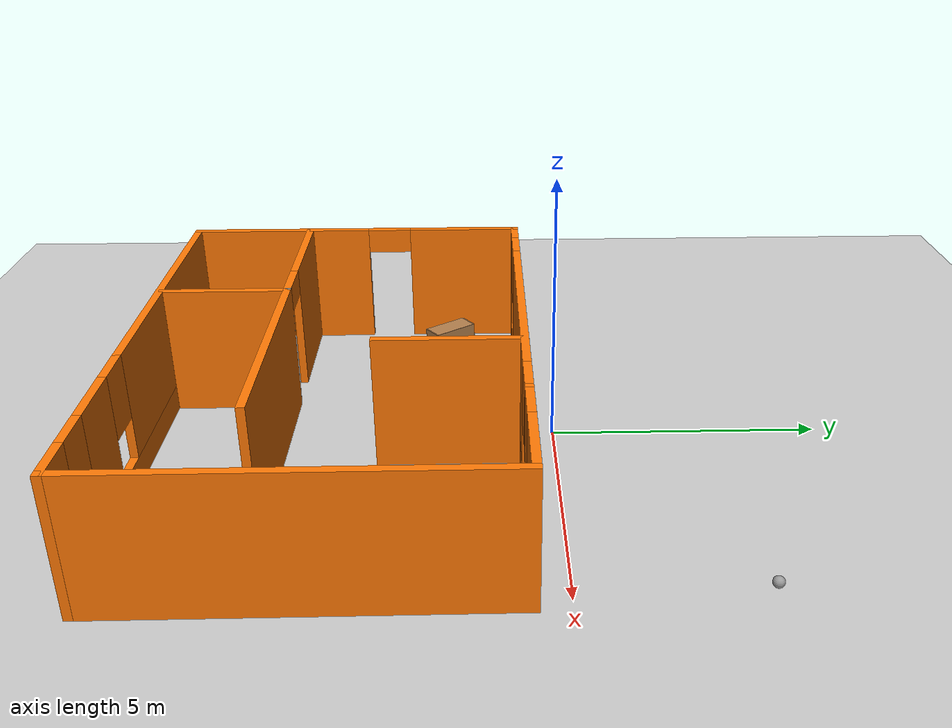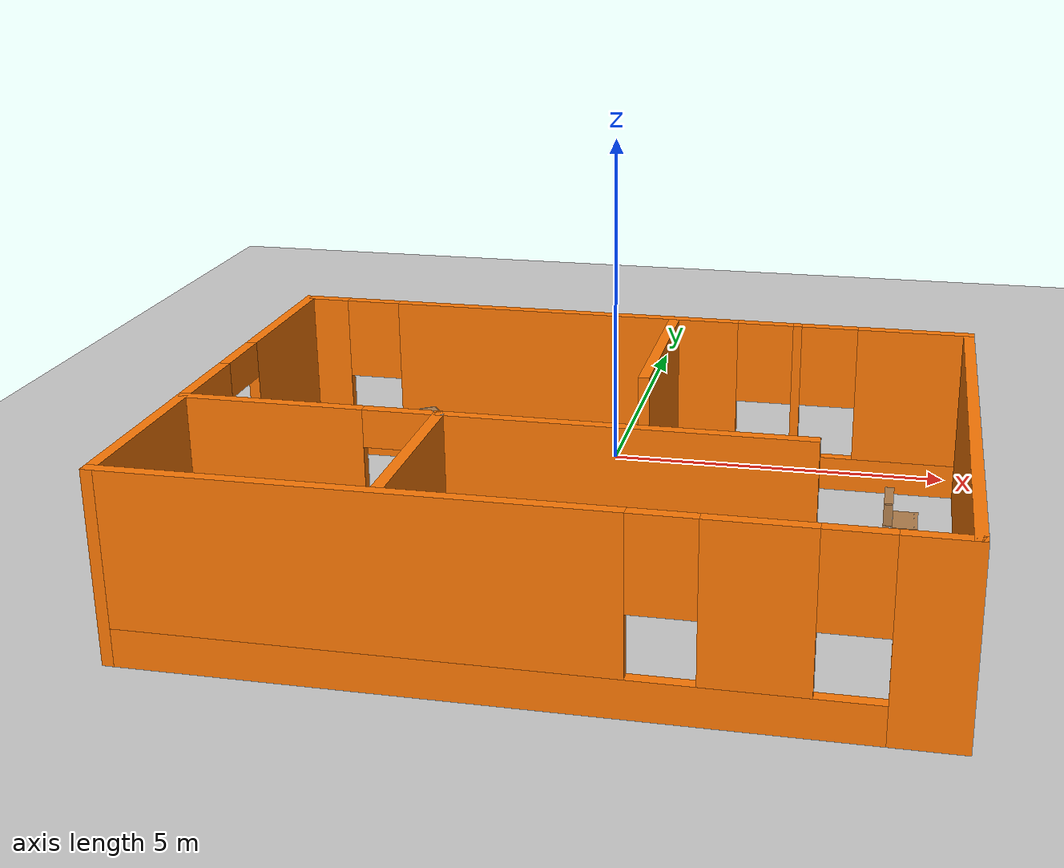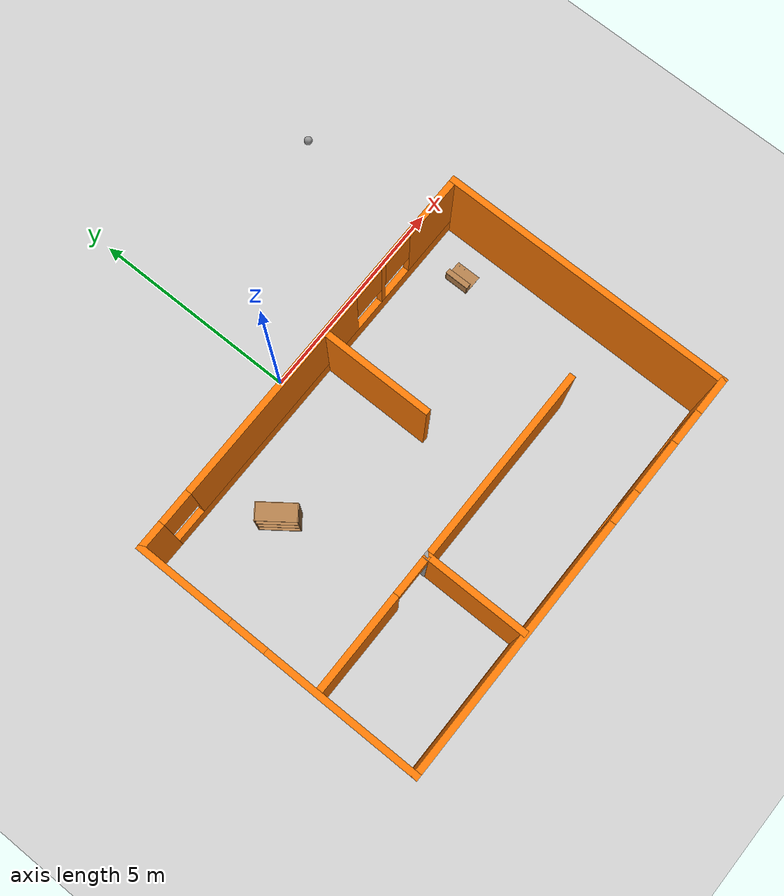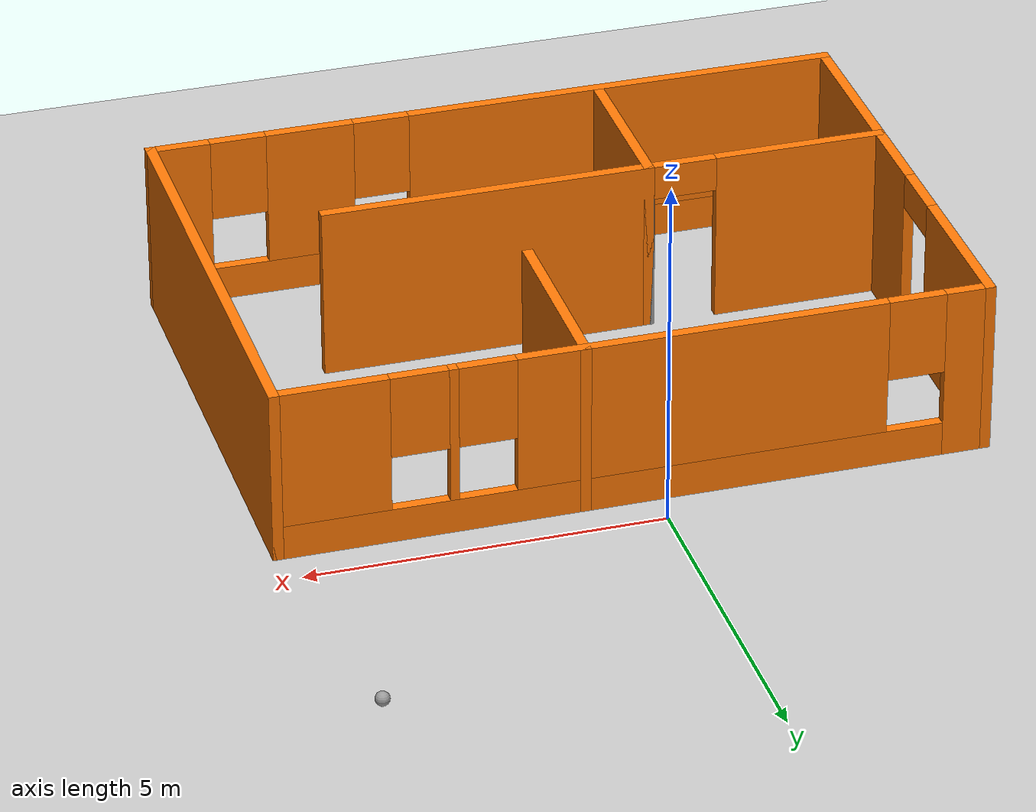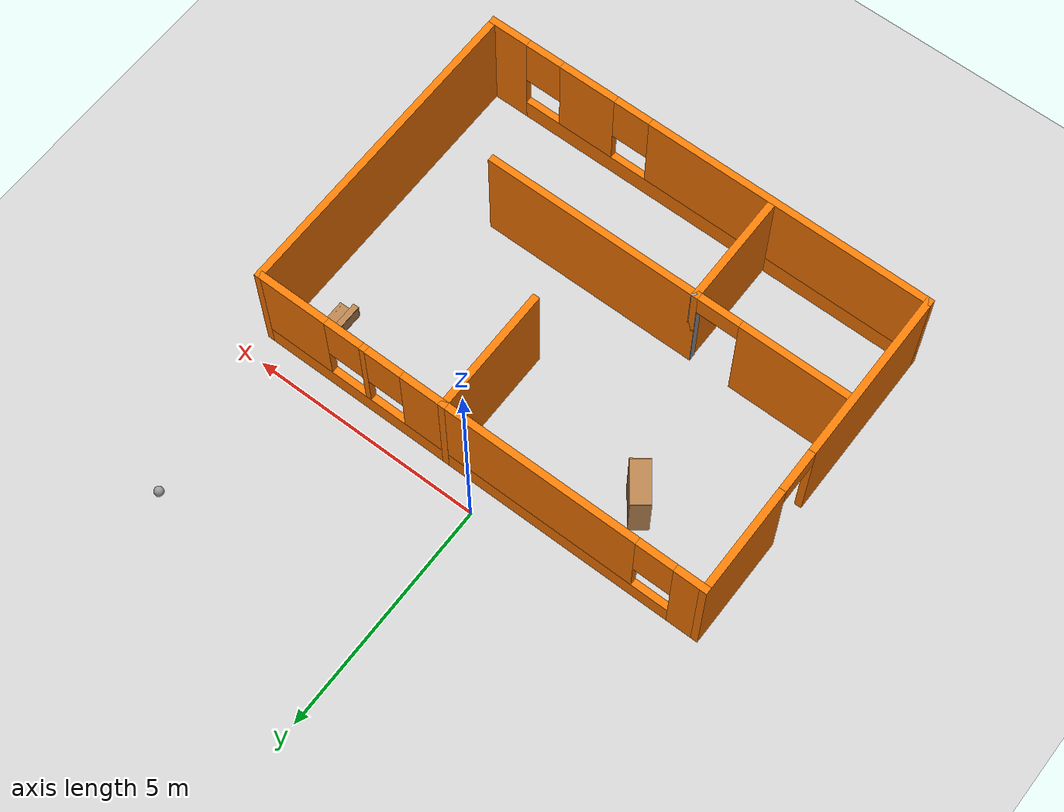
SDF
<sdf version="1.6">
 <world name="default">
  <plugin name="hello" filename="libhello.so"/>
  <light name="sun" type="directional">
   <pose>0 0 10 0 -0 0</pose>
   <diffuse>0.8 0.8 0.8 1</diffuse>
   <specular>0.2 0.2 0.2 1</specular>
   <attenuation>
    <range>1000</range>
    <constant>0.9</constant>
    <linear>0.01</linear>
    <quadratic>0.001</quadratic>
   </attenuation>
   <direction>-0.5 0.1 -0.9</direction>
  </light>
  <model name="ground_plane">
   <static>1</static>
   <link name="link">
    <collision name="collision">
     <geometry><plane><normal>0 0 1</normal><size>100 100</size></plane></geometry>
     <surface>
      <contact><collide_bitmask>65535</collide_bitmask></contact>
      <friction><ode><mu>100</mu><mu2>50</mu2></ode></friction>
     </surface>
    </collision>
    <visual name="visual">
     <cast_shadows>0</cast_shadows>
     <geometry><plane><normal>0 0 1</normal><size>100 100</size></plane></geometry>
     <material>
      <script><uri>file://media/materials/scripts/gazebo.material</uri><name>Gazebo/Grey</name></script>
     </material>
    </visual>
   </link>
  </model>
  <gravity>0 0 -9.8</gravity>
  <magnetic_field>6e-06 2.3e-05 -4.2e-05</magnetic_field>
  <atmosphere type="adiabatic"/>
  <physics name="default_physics" default="0" type="ode">
   <max_step_size>0.001</max_step_size>
   <real_time_factor>1</real_time_factor>
   <real_time_update_rate>1000</real_time_update_rate>
  </physics>
  <scene><ambient>0.4 0.4 0.4 1</ambient><background>0.7 0.7 0.7 1</background><shadows>1</shadows></scene>
  <spherical_coordinates>
   <surface_model>EARTH_WGS84</surface_model>
   <latitude_deg>0</latitude_deg>
   <longitude_deg>0</longitude_deg>
   <elevation>0</elevation>
   <heading_deg>0</heading_deg>
  </spherical_coordinates>
  <model name="Building1">
   <pose>0.275 -4.00475 0 0 -0 0</pose>
   <link name="Wall_0">
    <pose>0 3.42475 0 0 -0 0</pose>
    <visual name="Wall_0_Visual_0">
     <pose>-4.65298 0 1.25 0 -0 0</pose>
     <geometry><box><size>0.694035 0.15 2.5</size></box></geometry>
     <material>
      <script><uri>file://media/materials/scripts/gazebo.material</uri><name>Gazebo/Grey</name></script>
      <ambient>0.996078 0.47451 0.0196078 1</ambient>
     </material>
     <meta><layer>0</layer></meta>
    </visual>
    <collision name="Wall_0_Collision_0">
     <geometry><box><size>0.694035 0.15 2.5</size></box></geometry>
     <pose>-4.65298 0 1.25 0 -0 0</pose>
    </collision>
    <visual name="Wall_0_Visual_1">
     <pose>0.347017 0 0.25 0 -0 0</pose>
     <geometry><box><size>9.30597 0.15 0.5</size></box></geometry>
     <material>
      <script><uri>file://media/materials/scripts/gazebo.material</uri><name>Gazebo/Grey</name></script>
      <ambient>0.996078 0.47451 0.0196078 1</ambient>
     </material>
     <meta><layer>0</layer></meta>
    </visual>
    <collision name="Wall_0_Collision_1">
     <geometry><box><size>9.30597 0.15 0.5</size></box></geometry>
     <pose>0.347017 0 0.25 0 -0 0</pose>
    </collision>
    <visual name="Wall_0_Visual_2">
     <pose>-0.93034 0 1.5 0 -0 0</pose>
     <geometry><box><size>5.15125 0.15 2</size></box></geometry>
     <material>
      <script><uri>file://media/materials/scripts/gazebo.material</uri><name>Gazebo/Grey</name></script>
      <ambient>0.996078 0.47451 0.0196078 1</ambient>
     </material>
     <meta><layer>0</layer></meta>
    </visual>
    <collision name="Wall_0_Collision_2">
     <geometry><box><size>5.15125 0.15 2</size></box></geometry>
     <pose>-0.93034 0 1.5 0 -0 0</pose>
    </collision>
    <visual name="Wall_0_Visual_3">
     <pose>2.50816 0 1.5 0 -0 0</pose>
     <geometry><box><size>0.12575 0.15 2</size></box></geometry>
     <material>
      <script><uri>file://media/materials/scripts/gazebo.material</uri><name>Gazebo/Grey</name></script>
      <ambient>0.996078 0.47451 0.0196078 1</ambient>
     </material>
     <meta><layer>0</layer></meta>
    </visual>
    <collision name="Wall_0_Collision_3">
     <geometry><box><size>0.12575 0.15 2</size></box></geometry>
     <pose>2.50816 0 1.5 0 -0 0</pose>
    </collision>
    <visual name="Wall_0_Visual_4">
     <pose>4.18552 0 1.5 0 -0 0</pose>
     <geometry><box><size>1.62896 0.15 2</size></box></geometry>
     <material>
      <script><uri>file://media/materials/scripts/gazebo.material</uri><name>Gazebo/Grey</name></script>
      <ambient>0.996078 0.47451 0.0196078 1</ambient>
     </material>
     <meta><layer>0</layer></meta>
    </visual>
    <collision name="Wall_0_Collision_4">
     <geometry><box><size>1.62896 0.15 2</size></box></geometry>
     <pose>4.18552 0 1.5 0 -0 0</pose>
    </collision>
    <visual name="Wall_0_Visual_5">
     <pose>-3.90597 0 1.9 0 -0 0</pose>
     <geometry><box><size>0.8 0.15 1.2</size></box></geometry>
     <material>
      <script><uri>file://media/materials/scripts/gazebo.material</uri><name>Gazebo/Grey</name></script>
      <ambient>0.996078 0.47451 0.0196078 1</ambient>
     </material>
     <meta><layer>0</layer></meta>
    </visual>
    <collision name="Wall_0_Collision_5">
     <geometry><box><size>0.8 0.15 1.2</size></box></geometry>
     <pose>-3.90597 0 1.9 0 -0 0</pose>
    </collision>
    <visual name="Wall_0_Visual_6">
     <pose>2.04528 0 1.9 0 -0 0</pose>
     <geometry><box><size>0.8 0.15 1.2</size></box></geometry>
     <material>
      <script><uri>file://media/materials/scripts/gazebo.material</uri><name>Gazebo/Grey</name></script>
      <ambient>0.996078 0.47451 0.0196078 1</ambient>
     </material>
     <meta><layer>0</layer></meta>
    </visual>
    <collision name="Wall_0_Collision_6">
     <geometry><box><size>0.8 0.15 1.2</size></box></geometry>
     <pose>2.04528 0 1.9 0 -0 0</pose>
    </collision>
    <visual name="Wall_0_Visual_7">
     <pose>2.97104 0 1.9 0 -0 0</pose>
     <geometry><box><size>0.8 0.15 1.2</size></box></geometry>
     <material>
      <script><uri>file://media/materials/scripts/gazebo.material</uri><name>Gazebo/Grey</name></script>
      <ambient>0.996078 0.47451 0.0196078 1</ambient>
     </material>
     <meta><layer>0</layer></meta>
    </visual>
    <collision name="Wall_0_Collision_7">
     <geometry><box><size>0.8 0.15 1.2</size></box></geometry>
     <pose>2.97104 0 1.9 0 -0 0</pose>
    </collision>
   </link>
   <link name="Wall_1">
    <collision name="Wall_1_Collision">
     <geometry><box><size>7 0.15 2.5</size></box></geometry>
     <pose>0 0 1.25 0 -0 0</pose>
    </collision>
    <visual name="Wall_1_Visual">
     <pose>0 0 1.25 0 -0 0</pose>
     <geometry><box><size>7 0.15 2.5</size></box></geometry>
     <material>
      <script><uri>file://media/materials/scripts/gazebo.material</uri><name>Gazebo/Grey</name></script>
      <ambient>0.996078 0.47451 0.0196078 1</ambient>
     </material>
     <meta><layer>0</layer></meta>
    </visual>
    <pose>4.925 -0.000249 0 0 0 -1.5708</pose>
   </link>
   <link name="Wall_11">
    <collision name="Wall_11_Collision">
     <geometry><box><size>2.75 0.15 2.5</size></box></geometry>
     <pose>0 0 1.25 0 -0 0</pose>
    </collision>
    <visual name="Wall_11_Visual">
     <pose>0 0 1.25 0 -0 0</pose>
     <geometry><box><size>2.75 0.15 2.5</size></box></geometry>
     <material>
      <script><uri>file://media/materials/scripts/gazebo.material</uri><name>Gazebo/Grey</name></script>
      <ambient>0.996078 0.47451 0.0196078 1</ambient>
     </material>
     <meta><layer>0</layer></meta>
    </visual>
    <pose>0.709534 2.12525 0 0 0 -1.5708</pose>
   </link>
   <link name="Wall_2">
    <pose>0 -3.42525 0 0 -0 3.14159</pose>
    <visual name="Wall_2_Visual_0">
     <pose>-4.5492 0 1.25 0 -0 0</pose>
     <geometry><box><size>0.90159 0.15 2.5</size></box></geometry>
     <material>
      <script><uri>file://media/materials/scripts/gazebo.material</uri><name>Gazebo/Grey</name></script>
      <ambient>0.996078 0.47451 0.0196078 1</ambient>
     </material>
     <meta><layer>0</layer></meta>
    </visual>
    <collision name="Wall_2_Collision_0">
     <geometry><box><size>0.90159 0.15 2.5</size></box></geometry>
     <pose>-4.5492 0 1.25 0 -0 0</pose>
    </collision>
    <visual name="Wall_2_Visual_1">
     <pose>0.450795 0 0.25 0 -0 0</pose>
     <geometry><box><size>9.09841 0.15 0.5</size></box></geometry>
     <material>
      <script><uri>file://media/materials/scripts/gazebo.material</uri><name>Gazebo/Grey</name></script>
      <ambient>0.996078 0.47451 0.0196078 1</ambient>
     </material>
     <meta><layer>0</layer></meta>
    </visual>
    <collision name="Wall_2_Collision_1">
     <geometry><box><size>9.09841 0.15 0.5</size></box></geometry>
     <pose>0.450795 0 0.25 0 -0 0</pose>
    </collision>
    <visual name="Wall_2_Visual_2">
     <pose>-2.66686 0 1.5 0 -0 0</pose>
     <geometry><box><size>1.2631 0.15 2</size></box></geometry>
     <material>
      <script><uri>file://media/materials/scripts/gazebo.material</uri><name>Gazebo/Grey</name></script>
      <ambient>0.996078 0.47451 0.0196078 1</ambient>
     </material>
     <meta><layer>0</layer></meta>
    </visual>
    <collision name="Wall_2_Collision_2">
     <geometry><box><size>1.2631 0.15 2</size></box></geometry>
     <pose>-2.66686 0 1.5 0 -0 0</pose>
    </collision>
    <visual name="Wall_2_Visual_3">
     <pose>1.88234 0 1.5 0 -0 0</pose>
     <geometry><box><size>6.23531 0.15 2</size></box></geometry>
     <material>
      <script><uri>file://media/materials/scripts/gazebo.material</uri><name>Gazebo/Grey</name></script>
      <ambient>0.996078 0.47451 0.0196078 1</ambient>
     </material>
     <meta><layer>0</layer></meta>
    </visual>
    <collision name="Wall_2_Collision_3">
     <geometry><box><size>6.23531 0.15 2</size></box></geometry>
     <pose>1.88234 0 1.5 0 -0 0</pose>
    </collision>
    <visual name="Wall_2_Visual_4">
     <pose>-3.69841 0 1.9 0 -0 0</pose>
     <geometry><box><size>0.8 0.15 1.2</size></box></geometry>
     <material>
      <script><uri>file://media/materials/scripts/gazebo.material</uri><name>Gazebo/Grey</name></script>
      <ambient>0.996078 0.47451 0.0196078 1</ambient>
     </material>
     <meta><layer>0</layer></meta>
    </visual>
    <collision name="Wall_2_Collision_4">
     <geometry><box><size>0.8 0.15 1.2</size></box></geometry>
     <pose>-3.69841 0 1.9 0 -0 0</pose>
    </collision>
    <visual name="Wall_2_Visual_5">
     <pose>-1.63531 0 1.9 0 -0 0</pose>
     <geometry><box><size>0.8 0.15 1.2</size></box></geometry>
     <material>
      <script><uri>file://media/materials/scripts/gazebo.material</uri><name>Gazebo/Grey</name></script>
      <ambient>0.996078 0.47451 0.0196078 1</ambient>
     </material>
     <meta><layer>0</layer></meta>
    </visual>
    <collision name="Wall_2_Collision_5">
     <geometry><box><size>0.8 0.15 1.2</size></box></geometry>
     <pose>-1.63531 0 1.9 0 -0 0</pose>
    </collision>
   </link>
   <link name="Wall_3">
    <pose>-4.925 -0.000249 0 0 -0 1.5708</pose>
    <visual name="Wall_3_Visual_0">
     <pose>-1.62343 0 1.25 0 -0 0</pose>
     <geometry><box><size>3.75313 0.15 2.5</size></box></geometry>
     <material>
      <script><uri>file://media/materials/scripts/gazebo.material</uri><name>Gazebo/Grey</name></script>
      <ambient>0.996078 0.47451 0.0196078 1</ambient>
     </material>
     <meta><layer>0</layer></meta>
    </visual>
    <collision name="Wall_3_Collision_0">
     <geometry><box><size>3.75313 0.15 2.5</size></box></geometry>
     <pose>-1.62343 0 1.25 0 -0 0</pose>
    </collision>
    <visual name="Wall_3_Visual_1">
     <pose>2.32657 0 1.25 0 -0 0</pose>
     <geometry><box><size>2.34687 0.15 2.5</size></box></geometry>
     <material>
      <script><uri>file://media/materials/scripts/gazebo.material</uri><name>Gazebo/Grey</name></script>
      <ambient>0.996078 0.47451 0.0196078 1</ambient>
     </material>
     <meta><layer>0</layer></meta>
    </visual>
    <collision name="Wall_3_Collision_1">
     <geometry><box><size>2.34687 0.15 2.5</size></box></geometry>
     <pose>2.32657 0 1.25 0 -0 0</pose>
    </collision>
    <visual name="Wall_3_Visual_2">
     <pose>0.703131 0 2.25 0 -0 0</pose>
     <geometry><box><size>0.9 0.15 0.5</size></box></geometry>
     <material>
      <script><uri>file://media/materials/scripts/gazebo.material</uri><name>Gazebo/Grey</name></script>
      <ambient>0.996078 0.47451 0.0196078 1</ambient>
     </material>
     <meta><layer>0</layer></meta>
    </visual>
    <collision name="Wall_3_Collision_2">
     <geometry><box><size>0.9 0.15 0.5</size></box></geometry>
     <pose>0.703131 0 2.25 0 -0 0</pose>
    </collision>
   </link>
   <link name="Wall_5">
    <pose>-3.22749 -1.01571 0 0 -0 0</pose>
    <visual name="Wall_5_Visual_0">
     <pose>-0.520098 0 1.25 0 -0 0</pose>
     <geometry><box><size>2.4598 0.15 2.5</size></box></geometry>
     <material>
      <script><uri>file://media/materials/scripts/gazebo.material</uri><name>Gazebo/Grey</name></script>
      <ambient>0.996078 0.47451 0.0196078 1</ambient>
     </material>
     <meta><layer>0</layer></meta>
    </visual>
    <collision name="Wall_5_Collision_0">
     <geometry><box><size>2.4598 0.15 2.5</size></box></geometry>
     <pose>-0.520098 0 1.25 0 -0 0</pose>
    </collision>
    <visual name="Wall_5_Visual_1">
     <pose>1.6799 0 1.25 0 -0 0</pose>
     <geometry><box><size>0.140195 0.15 2.5</size></box></geometry>
     <material>
      <script><uri>file://media/materials/scripts/gazebo.material</uri><name>Gazebo/Grey</name></script>
      <ambient>0.996078 0.47451 0.0196078 1</ambient>
     </material>
     <meta><layer>0</layer></meta>
    </visual>
    <collision name="Wall_5_Collision_1">
     <geometry><box><size>0.140195 0.15 2.5</size></box></geometry>
     <pose>1.6799 0 1.25 0 -0 0</pose>
    </collision>
    <visual name="Wall_5_Visual_2">
     <pose>1.1598 0 2.25 0 -0 0</pose>
     <geometry><box><size>0.9 0.15 0.5</size></box></geometry>
     <material>
      <script><uri>file://media/materials/scripts/gazebo.material</uri><name>Gazebo/Grey</name></script>
      <ambient>0.996078 0.47451 0.0196078 1</ambient>
     </material>
     <meta><layer>0</layer></meta>
    </visual>
    <collision name="Wall_5_Collision_2">
     <geometry><box><size>0.9 0.15 0.5</size></box></geometry>
     <pose>1.1598 0 2.25 0 -0 0</pose>
    </collision>
   </link>
   <link name="Wall_6">
    <collision name="Wall_6_Collision">
     <geometry><box><size>0.16 0.15 2.5</size></box></geometry>
     <pose>0 0 1.25 0 -0 0</pose>
    </collision>
    <visual name="Wall_6_Visual">
     <pose>0 0 1.25 0 -0 0</pose>
     <geometry><box><size>0.16 0.15 2.5</size></box></geometry>
     <material>
      <script><uri>file://media/materials/scripts/gazebo.material</uri><name>Gazebo/Grey</name></script>
      <ambient>1 1 1 1</ambient>
     </material>
     <meta><layer>0</layer></meta>
    </visual>
    <pose>-1.5475 -1.01571 0 0 -0 0</pose>
   </link>
   <link name="Wall_7">
    <collision name="Wall_7_Collision">
     <geometry><box><size>2.5 0.15 2.5</size></box></geometry>
     <pose>0 0 1.25 0 -0 0</pose>
    </collision>
    <visual name="Wall_7_Visual">
     <pose>0 0 1.25 0 -0 0</pose>
     <geometry><box><size>2.5 0.15 2.5</size></box></geometry>
     <material>
      <script><uri>file://media/materials/scripts/gazebo.material</uri><name>Gazebo/Grey</name></script>
      <ambient>0.996078 0.47451 0.0196078 1</ambient>
     </material>
     <meta><layer>0</layer></meta>
    </visual>
    <pose>-1.54249 -2.19071 0 0 0 -1.5708</pose>
   </link>
   <link name="Wall_9">
    <collision name="Wall_9_Collision">
     <geometry><box><size>4.75 0.15 2.5</size></box></geometry>
     <pose>0 0 1.25 0 -0 0</pose>
    </collision>
    <visual name="Wall_9_Visual">
     <pose>0 0 1.25 0 -0 0</pose>
     <geometry><box><size>4.75 0.15 2.5</size></box></geometry>
     <material>
      <script><uri>file://media/materials/scripts/gazebo.material</uri><name>Gazebo/Grey</name></script>
      <ambient>0.996078 0.47451 0.0196078 1</ambient>
     </material>
     <meta><layer>0</layer></meta>
    </visual>
    <pose>0.757505 -1.01571 0 0 -0 0</pose>
   </link>
   <static>1</static>
  </model>
  <model name="wooden_case">
   <link name="base">
    <pose>0 0 0.024 0 -0 0</pose>
    <inertial>
     <pose>-0.022184 0 0.171592 0 -0 0</pose>
     <mass>3.96264</mass>
     <inertia>
      <ixx>0.213536</ixx>
      <ixy>0</ixy>
      <ixz>0.000779377</ixz>
      <iyy>0.0708943</iyy>
      <iyz>0</iyz>
      <izz>0.154604</izz>
     </inertia>
    </inertial>
    <collision name="collision_back">
     <pose>-0.053975 0 0.1778 0 -0 0</pose>
     <geometry><box><size>0.01905 0.5461 0.3175</size></box></geometry>
     <surface>
      <contact>
       <poissons_ratio>0.347</poissons_ratio>
       <elastic_modulus>8.8e+09</elastic_modulus>
       <ode><kp>100000</kp><kd>100</kd><max_vel>100</max_vel><min_depth>0.001</min_depth></ode>
      </contact>
      <friction>
       <torsional>
        <coefficient>1</coefficient>
        <use_patch_radius>0</use_patch_radius>
        <surface_radius>0.01</surface_radius>
       </torsional>
      </friction>
     </surface>
    </collision>
    <visual name="visual_back">
     <pose>-0.053975 0 0.1778 0 -0 0</pose>
     <geometry><box><size>0.01905 0.5461 0.3175</size></box></geometry>
     <material>
      <script><uri>file://media/materials/scripts/gazebo.material</uri><name>Gazebo/Wood</name></script>
     </material>
    </visual>
    <collision name="collision_bottom">
     <pose>0 0 0.009525 0 -0 0</pose>
     <geometry><box><size>0.127 0.5842 0.01905</size></box></geometry>
     <surface>
      <contact>
       <poissons_ratio>0.347</poissons_ratio>
       <elastic_modulus>8.8e+09</elastic_modulus>
       <ode><kp>100000</kp><kd>100</kd><max_vel>100</max_vel><min_depth>0.001</min_depth></ode>
      </contact>
      <friction>
       <torsional>
        <coefficient>1</coefficient>
        <use_patch_radius>0</use_patch_radius>
        <surface_radius>0.01</surface_radius>
       </torsional>
      </friction>
     </surface>
    </collision>
    <visual name="visual_bottom">
     <pose>0 0 0.009525 0 -0 0</pose>
     <geometry><box><size>0.127 0.5842 0.01905</size></box></geometry>
     <material>
      <script><uri>file://media/materials/scripts/gazebo.material</uri><name>Gazebo/Wood</name></script>
     </material>
    </visual>
    <collision name="collision_top">
     <pose>0 0 0.346075 0 -0 0</pose>
     <geometry><box><size>0.127 0.5842 0.01905</size></box></geometry>
     <surface>
      <contact>
       <poissons_ratio>0.347</poissons_ratio>
       <elastic_modulus>8.8e+09</elastic_modulus>
       <ode><kp>100000</kp><kd>100</kd><max_vel>100</max_vel><min_depth>0.001</min_depth></ode>
      </contact>
      <friction>
       <torsional>
        <coefficient>1</coefficient>
        <use_patch_radius>0</use_patch_radius>
        <surface_radius>0.01</surface_radius>
       </torsional>
      </friction>
     </surface>
    </collision>
    <visual name="visual_top">
     <pose>0 0 0.346075 0 -0 0</pose>
     <geometry><box><size>0.127 0.5842 0.01905</size></box></geometry>
     <material>
      <script><uri>file://media/materials/scripts/gazebo.material</uri><name>Gazebo/Wood</name></script>
     </material>
    </visual>
    <collision name="collision_left">
     <pose>0 -0.282575 0.1778 0 -0 0</pose>
     <geometry><box><size>0.127 0.01905 0.3175</size></box></geometry>
     <surface>
      <contact>
       <poissons_ratio>0.347</poissons_ratio>
       <elastic_modulus>8.8e+09</elastic_modulus>
       <ode><kp>100000</kp><kd>100</kd><max_vel>100</max_vel><min_depth>0.001</min_depth></ode>
      </contact>
      <friction>
       <torsional>
        <coefficient>1</coefficient>
        <use_patch_radius>0</use_patch_radius>
        <surface_radius>0.01</surface_radius>
       </torsional>
      </friction>
     </surface>
    </collision>
    <visual name="visual_left">
     <pose>0 -0.282575 0.1778 0 -0 0</pose>
     <geometry><box><size>0.127 0.01905 0.3175</size></box></geometry>
     <material>
      <script><uri>file://media/materials/scripts/gazebo.material</uri><name>Gazebo/Wood</name></script>
     </material>
    </visual>
    <collision name="collision_right">
     <pose>0 0.282575 0.1778 0 -0 0</pose>
     <geometry><box><size>0.127 0.01905 0.3175</size></box></geometry>
     <surface>
      <contact>
       <poissons_ratio>0.347</poissons_ratio>
       <elastic_modulus>8.8e+09</elastic_modulus>
       <ode><kp>100000</kp><kd>100</kd><max_vel>100</max_vel><min_depth>0.001</min_depth></ode>
      </contact>
      <friction>
       <torsional>
        <coefficient>1</coefficient>
        <use_patch_radius>0</use_patch_radius>
        <surface_radius>0.01</surface_radius>
       </torsional>
      </friction>
     </surface>
    </collision>
    <visual name="visual_right">
     <pose>0 0.282575 0.1778 0 -0 0</pose>
     <geometry><box><size>0.127 0.01905 0.3175</size></box></geometry>
     <material>
      <script><uri>file://media/materials/scripts/gazebo.material</uri><name>Gazebo/Wood</name></script>
     </material>
    </visual>
    <collision name="collision_block_left">
     <pose>0.0095 -0.2151 -0.012 0 -0 0</pose>
     <geometry><box><size>0.108 0.05 0.024</size></box></geometry>
     <surface>
      <contact>
       <poissons_ratio>0.347</poissons_ratio>
       <elastic_modulus>8.8e+09</elastic_modulus>
       <ode><kp>100000</kp><kd>100</kd><max_vel>100</max_vel><min_depth>0.001</min_depth></ode>
      </contact>
      <friction>
       <torsional>
        <coefficient>1</coefficient>
        <use_patch_radius>0</use_patch_radius>
        <surface_radius>0.01</surface_radius>
       </torsional>
      </friction>
     </surface>
    </collision>
    <visual name="visual_block_left">
     <pose>0.0095 -0.2151 -0.012 0 -0 0</pose>
     <geometry><box><size>0.108 0.05 0.024</size></box></geometry>
     <material>
      <script><uri>file://media/materials/scripts/gazebo.material</uri><name>Gazebo/Wood</name></script>
     </material>
    </visual>
    <collision name="collision_block_right">
     <pose>0.0095 0.2151 -0.012 0 -0 0</pose>
     <geometry><box><size>0.108 0.05 0.024</size></box></geometry>
     <surface>
      <contact>
       <poissons_ratio>0.347</poissons_ratio>
       <elastic_modulus>8.8e+09</elastic_modulus>
       <ode><kp>100000</kp><kd>100</kd><max_vel>100</max_vel><min_depth>0.001</min_depth></ode>
      </contact>
      <friction>
       <torsional>
        <coefficient>1</coefficient>
        <use_patch_radius>0</use_patch_radius>
        <surface_radius>0.01</surface_radius>
       </torsional>
      </friction>
     </surface>
    </collision>
    <visual name="visual_block_right">
     <pose>0.0095 0.2151 -0.012 0 -0 0</pose>
     <geometry><box><size>0.108 0.05 0.024</size></box></geometry>
     <material>
      <script><uri>file://media/materials/scripts/gazebo.material</uri><name>Gazebo/Wood</name></script>
     </material>
    </visual>
   </link>
   <link name="lid">
    <pose>0.243775 0 0.009525 0 -0 0</pose>
    <inertial>
     <mass>1.97874</mass>
     <inertia>
      <ixx>0.0563367</ixx>
      <ixy>0</ixy>
      <ixz>0</ixz>
      <iyy>0.020911</iyy>
      <iyz>0</iyz>
      <izz>0.0771281</izz>
     </inertia>
    </inertial>
    <collision name="collision">
     <geometry><box><size>0.3556 0.5842 0.01905</size></box></geometry>
     <surface>
      <contact>
       <poissons_ratio>0.347</poissons_ratio>
       <elastic_modulus>8.8e+09</elastic_modulus>
       <ode><kp>100000</kp><kd>100</kd><max_vel>100</max_vel><min_depth>0.001</min_depth></ode>
      </contact>
      <friction>
       <torsional>
        <coefficient>1</coefficient>
        <use_patch_radius>0</use_patch_radius>
        <surface_radius>0.01</surface_radius>
       </torsional>
      </friction>
     </surface>
    </collision>
    <visual name="visual">
     <geometry><box><size>0.3556 0.5842 0.01905</size></box></geometry>
     <material>
      <script><uri>file://media/materials/scripts/gazebo.material</uri><name>Gazebo/Wood</name></script>
     </material>
    </visual>
    <visual name="tee_nut_1">
     <pose>0.122 -0.216 0 0 -0 0</pose>
     <geometry><cylinder><radius>0.00635</radius><length>0.0192405</length></cylinder></geometry>
     <material>
      <script><uri>file://media/materials/scripts/gazebo.material</uri><name>Gazebo/Grey</name></script>
     </material>
    </visual>
    <visual name="tee_nut_2">
     <pose>0.122 -0.088 0 0 -0 0</pose>
     <geometry><cylinder><radius>0.00635</radius><length>0.0192405</length></cylinder></geometry>
     <material>
      <script><uri>file://media/materials/scripts/gazebo.material</uri><name>Gazebo/Grey</name></script>
     </material>
    </visual>
    <visual name="tee_nut_3">
     <pose>0.122 0.088 0 0 -0 0</pose>
     <geometry><cylinder><radius>0.00635</radius><length>0.0192405</length></cylinder></geometry>
     <material>
      <script><uri>file://media/materials/scripts/gazebo.material</uri><name>Gazebo/Grey</name></script>
     </material>
    </visual>
    <visual name="tee_nut_4">
     <pose>0.122 0.216 0 0 -0 0</pose>
     <geometry><cylinder><radius>0.00635</radius><length>0.0192405</length></cylinder></geometry>
     <material>
      <script><uri>file://media/materials/scripts/gazebo.material</uri><name>Gazebo/Grey</name></script>
     </material>
    </visual>
   </link>
   <joint name="lid_hinge" type="revolute">
    <pose>-0.1778 0 0.01905 0 -0 0</pose>
    <parent>base</parent>
    <child>lid</child>
    <axis>
     <xyz>0 1 0</xyz>
     <limit><upper>0.523599</upper><lower>-1.5708</lower></limit>
     <use_parent_model_frame>0</use_parent_model_frame>
     <dynamics><spring_reference>0</spring_reference><spring_stiffness>0</spring_stiffness></dynamics>
    </axis>
   </joint>
   <pose>4.23063 -1.59514 -0.001057 0 -0.000427 -2e-06</pose>
  </model>
  <model name="Untitled">
   <link name="link_0">
    <inertial>
     <mass>1</mass>
     <inertia><ixx>0.1</ixx><ixy>0</ixy><ixz>0</ixz><iyy>0.1</iyy><iyz>0</iyz><izz>0.1</izz></inertia>
    </inertial>
    <visual name="visual">
     <geometry><sphere><radius>0.1</radius></sphere></geometry>
     <material>
      <lighting>1</lighting>
      <script><uri>file://media/materials/scripts/gazebo.material</uri><name>Gazebo/Grey</name></script>
      <shader type="pixel"><normal_map>__default__</normal_map></shader>
      <ambient>1 1 1 1</ambient>
      <diffuse>1 1 1 1</diffuse>
      <specular>1 1 1 1</specular>
      <emissive>1 1 1 1</emissive>
     </material>
    </visual>
    <collision name="collision">
     <geometry><sphere><radius>0.1</radius></sphere></geometry>
     <surface>
      <friction>
       <ode><mu>1</mu><mu2>1</mu2><fdir1>0 0 0</fdir1><slip1>0</slip1><slip2>0</slip2></ode>
       <torsional>
        <coefficient>1</coefficient>
        <patch_radius>0</patch_radius>
        <surface_radius>0</surface_radius>
        <use_patch_radius>1</use_patch_radius>
        <ode><slip>0</slip></ode>
       </torsional>
      </friction>
      <bounce><restitution_coefficient>0</restitution_coefficient><threshold>1e+06</threshold></bounce>
      <contact>
       <collide_without_contact>0</collide_without_contact>
       <collide_without_contact_bitmask>1</collide_without_contact_bitmask>
       <collide_bitmask>1</collide_bitmask>
       <ode>
        <soft_cfm>0</soft_cfm>
        <soft_erp>0.2</soft_erp>
        <kp>1e+13</kp>
        <kd>1</kd>
        <max_vel>0.01</max_vel>
        <min_depth>0</min_depth>
       </ode>
       <bullet>
        <split_impulse>1</split_impulse>
        <split_impulse_penetration_threshold>-0.01</split_impulse_penetration_threshold>
        <soft_cfm>0</soft_cfm>
        <soft_erp>0.2</soft_erp>
        <kp>1e+13</kp>
        <kd>1</kd>
       </bullet>
      </contact>
     </surface>
    </collision>
   </link>
   <static>0</static>
   <pose>4.7758 3.16186 0.1 0 -0 0</pose>
  </model>
  <plugin name="collision_map_creator" filename="libcollision_map_creator.so"/>
  <model name="bookshelf">
   <static>1</static>
   <link name="link">
    <inertial><mass>1</mass></inertial>
    <collision name="back">
     <pose>0 0.005 0.6 0 -0 0</pose>
     <geometry><box><size>0.9 0.01 1.2</size></box></geometry>
    </collision>
    <visual name="visual1">
     <pose>0 0.005 0.6 0 -0 0</pose>
     <geometry><box><size>0.9 0.01 1.2</size></box></geometry>
     <material>
      <script><uri>file://media/materials/scripts/gazebo.material</uri><name>Gazebo/Wood</name></script>
     </material>
    </visual>
    <collision name="left_side">
     <pose>0.45 -0.195 0.6 0 -0 0</pose>
     <geometry><box><size>0.02 0.4 1.2</size></box></geometry>
    </collision>
    <visual name="visual2">
     <pose>0.45 -0.195 0.6 0 -0 0</pose>
     <geometry><box><size>0.02 0.4 1.2</size></box></geometry>
     <material>
      <script><uri>file://media/materials/scripts/gazebo.material</uri><name>Gazebo/Wood</name></script>
     </material>
    </visual>
    <collision name="right_side">
     <pose>-0.45 -0.195 0.6 0 -0 0</pose>
     <geometry><box><size>0.02 0.4 1.2</size></box></geometry>
    </collision>
    <visual name="visual3">
     <pose>-0.45 -0.195 0.6 0 -0 0</pose>
     <geometry><box><size>0.02 0.4 1.2</size></box></geometry>
     <material>
      <script><uri>file://media/materials/scripts/gazebo.material</uri><name>Gazebo/Wood</name></script>
     </material>
    </visual>
    <collision name="bottom">
     <pose>0 -0.195 0.03 0 -0 0</pose>
     <geometry><box><size>0.88 0.4 0.06</size></box></geometry>
    </collision>
    <visual name="visual4">
     <pose>0 -0.195 0.03 0 -0 0</pose>
     <geometry><box><size>0.88 0.4 0.06</size></box></geometry>
     <material>
      <script><uri>file://media/materials/scripts/gazebo.material</uri><name>Gazebo/Wood</name></script>
     </material>
    </visual>
    <collision name="top">
     <pose>0 -0.195 1.19 0 -0 0</pose>
     <geometry><box><size>0.88 0.4 0.02</size></box></geometry>
    </collision>
    <visual name="visual5">
     <pose>0 -0.195 1.19 0 -0 0</pose>
     <geometry><box><size>0.88 0.4 0.02</size></box></geometry>
     <material>
      <script><uri>file://media/materials/scripts/gazebo.material</uri><name>Gazebo/Wood</name></script>
     </material>
    </visual>
    <collision name="low_shelf">
     <pose>0 -0.195 0.43 0 -0 0</pose>
     <geometry><box><size>0.88 0.4 0.02</size></box></geometry>
    </collision>
    <visual name="visual6">
     <pose>0 -0.195 0.43 0 -0 0</pose>
     <geometry><box><size>0.88 0.4 0.02</size></box></geometry>
     <material>
      <script><uri>file://media/materials/scripts/gazebo.material</uri><name>Gazebo/Wood</name></script>
     </material>
    </visual>
    <collision name="high_shelf">
     <pose>0 -0.195 0.8 0 -0 0</pose>
     <geometry><box><size>0.88 0.4 0.02</size></box></geometry>
    </collision>
    <visual name="visual7">
     <pose>0 -0.195 0.8 0 -0 0</pose>
     <geometry><box><size>0.88 0.4 0.02</size></box></geometry>
     <material>
      <script><uri>file://media/materials/scripts/gazebo.material</uri><name>Gazebo/Wood</name></script>
     </material>
    </visual>
   </link>
   <pose>-2.18862 -1.84333 0 0 0 -0.931917</pose>
  </model>
 </world>
</sdf>
